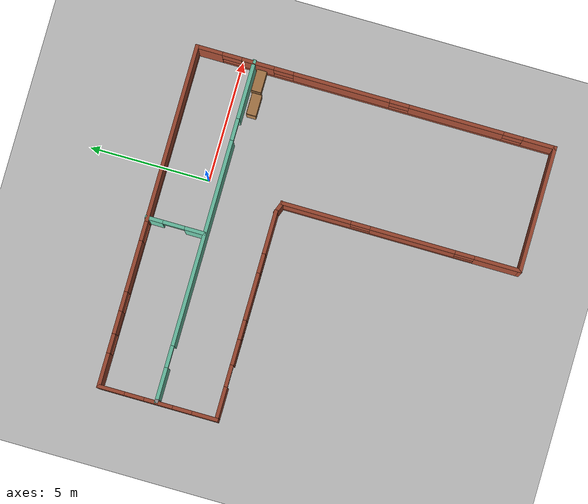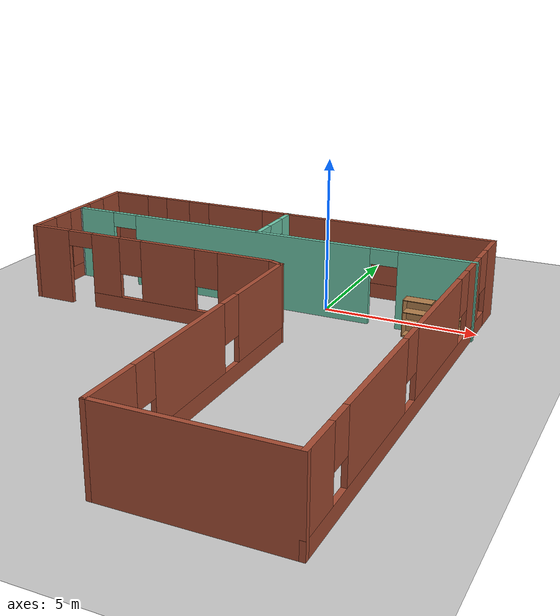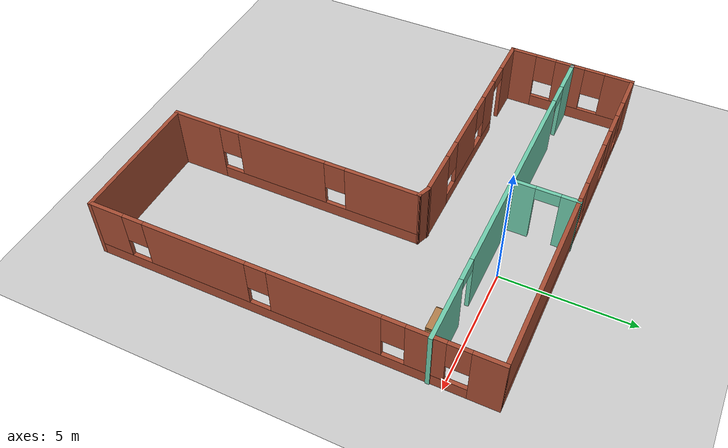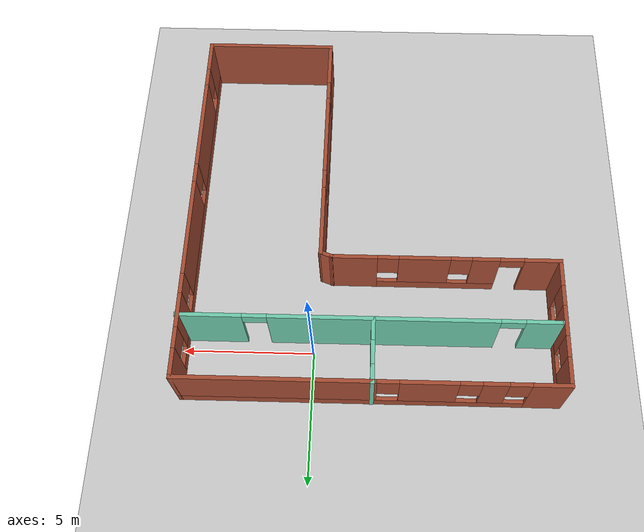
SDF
<sdf version="1.6">
 <world name="default">
  <light name="sun" type="directional">
   <pose>0 0 10 0 -0 0</pose>
   <diffuse>0.8 0.8 0.8 1</diffuse>
   <specular>0.2 0.2 0.2 1</specular>
   <attenuation>
    <range>1000</range>
    <constant>0.9</constant>
    <linear>0.01</linear>
    <quadratic>0.001</quadratic>
   </attenuation>
   <direction>-0.5 0.1 -0.9</direction>
  </light>
  <model name="ground_plane">
   <static>1</static>
   <link name="link">
    <collision name="collision">
     <geometry><plane><normal>0 0 1</normal><size>100 100</size></plane></geometry>
     <surface><friction><ode><mu>100</mu><mu2>50</mu2></ode></friction></surface>
    </collision>
    <visual name="visual">
     <cast_shadows>0</cast_shadows>
     <geometry><plane><normal>0 0 1</normal><size>100 100</size></plane></geometry>
     <material>
      <script><uri>file://media/materials/scripts/gazebo.material</uri><name>Gazebo/Grey</name></script>
     </material>
    </visual>
   </link>
  </model>
  <gravity>0 0 -9.8</gravity>
  <magnetic_field>6e-06 2.3e-05 -4.2e-05</magnetic_field>
  <atmosphere type="adiabatic"/>
  <physics name="default_physics" default="0" type="ode">
   <max_step_size>0.001</max_step_size>
   <real_time_factor>1</real_time_factor>
   <real_time_update_rate>1000</real_time_update_rate>
  </physics>
  <scene><ambient>0.4 0.4 0.4 1</ambient><background>0.7 0.7 0.7 1</background><shadows>1</shadows></scene>
  <spherical_coordinates>
   <surface_model>EARTH_WGS84</surface_model>
   <latitude_deg>0</latitude_deg>
   <longitude_deg>0</longitude_deg>
   <elevation>0</elevation>
   <heading_deg>0</heading_deg>
  </spherical_coordinates>
  <model name="LBuilding">
   <pose>-2.14032 -5.56633 0 0 -0 0</pose>
   <link name="Wall_0">
    <pose>-2.77156 2.56406 0 0 -0 3.14159</pose>
    <visual name="Wall_0_Visual_0">
     <pose>-3.46603 0 1.25 0 -0 0</pose>
     <geometry><box><size>1.81795 0.15 2.5</size></box></geometry>
     <material>
      <script><uri>file://media/materials/scripts/gazebo.material</uri><name>Gazebo/Bricks</name></script>
      <ambient>1 1 1 1</ambient>
     </material>
     <meta><layer>0</layer></meta>
    </visual>
    <collision name="Wall_0_Collision_0">
     <geometry><box><size>1.81795 0.15 2.5</size></box></geometry>
     <pose>-3.46603 0 1.25 0 -0 0</pose>
    </collision>
    <visual name="Wall_0_Visual_1">
     <pose>3.66017 0 1.25 0 -0 0</pose>
     <geometry><box><size>1.42966 0.15 2.5</size></box></geometry>
     <material>
      <script><uri>file://media/materials/scripts/gazebo.material</uri><name>Gazebo/Bricks</name></script>
      <ambient>1 1 1 1</ambient>
     </material>
     <meta><layer>0</layer></meta>
    </visual>
    <collision name="Wall_0_Collision_1">
     <geometry><box><size>1.42966 0.15 2.5</size></box></geometry>
     <pose>3.66017 0 1.25 0 -0 0</pose>
    </collision>
    <visual name="Wall_0_Visual_2">
     <pose>-0.255854 0 0.25 0 -0 0</pose>
     <geometry><box><size>4.60239 0.15 0.5</size></box></geometry>
     <material>
      <script><uri>file://media/materials/scripts/gazebo.material</uri><name>Gazebo/Bricks</name></script>
      <ambient>1 1 1 1</ambient>
     </material>
     <meta><layer>0</layer></meta>
    </visual>
    <collision name="Wall_0_Collision_2">
     <geometry><box><size>4.60239 0.15 0.5</size></box></geometry>
     <pose>-0.255854 0 0.25 0 -0 0</pose>
    </collision>
    <visual name="Wall_0_Visual_3">
     <pose>-0.78156 0 1.5 0 -0 0</pose>
     <geometry><box><size>1.95098 0.15 2</size></box></geometry>
     <material>
      <script><uri>file://media/materials/scripts/gazebo.material</uri><name>Gazebo/Bricks</name></script>
      <ambient>1 1 1 1</ambient>
     </material>
     <meta><layer>0</layer></meta>
    </visual>
    <collision name="Wall_0_Collision_3">
     <geometry><box><size>1.95098 0.15 2</size></box></geometry>
     <pose>-0.78156 0 1.5 0 -0 0</pose>
    </collision>
    <visual name="Wall_0_Visual_4">
     <pose>1.51964 0 1.5 0 -0 0</pose>
     <geometry><box><size>1.05141 0.15 2</size></box></geometry>
     <material>
      <script><uri>file://media/materials/scripts/gazebo.material</uri><name>Gazebo/Bricks</name></script>
      <ambient>1 1 1 1</ambient>
     </material>
     <meta><layer>0</layer></meta>
    </visual>
    <collision name="Wall_0_Collision_4">
     <geometry><box><size>1.05141 0.15 2</size></box></geometry>
     <pose>1.51964 0 1.5 0 -0 0</pose>
    </collision>
    <visual name="Wall_0_Visual_5">
     <pose>-2.15705 0 1.9 0 -0 0</pose>
     <geometry><box><size>0.8 0.15 1.2</size></box></geometry>
     <material>
      <script><uri>file://media/materials/scripts/gazebo.material</uri><name>Gazebo/Bricks</name></script>
      <ambient>1 1 1 1</ambient>
     </material>
     <meta><layer>0</layer></meta>
    </visual>
    <collision name="Wall_0_Collision_5">
     <geometry><box><size>0.8 0.15 1.2</size></box></geometry>
     <pose>-2.15705 0 1.9 0 -0 0</pose>
    </collision>
    <visual name="Wall_0_Visual_6">
     <pose>0.593929 0 1.9 0 -0 0</pose>
     <geometry><box><size>0.8 0.15 1.2</size></box></geometry>
     <material>
      <script><uri>file://media/materials/scripts/gazebo.material</uri><name>Gazebo/Bricks</name></script>
      <ambient>1 1 1 1</ambient>
     </material>
     <meta><layer>0</layer></meta>
    </visual>
    <collision name="Wall_0_Collision_6">
     <geometry><box><size>0.8 0.15 1.2</size></box></geometry>
     <pose>0.593929 0 1.9 0 -0 0</pose>
    </collision>
    <visual name="Wall_0_Visual_7">
     <pose>2.49534 0 2.25 0 -0 0</pose>
     <geometry><box><size>0.9 0.15 0.5</size></box></geometry>
     <material>
      <script><uri>file://media/materials/scripts/gazebo.material</uri><name>Gazebo/Bricks</name></script>
      <ambient>1 1 1 1</ambient>
     </material>
     <meta><layer>0</layer></meta>
    </visual>
    <collision name="Wall_0_Collision_7">
     <geometry><box><size>0.9 0.15 0.5</size></box></geometry>
     <pose>2.49534 0 2.25 0 -0 0</pose>
    </collision>
   </link>
   <link name="Wall_1">
    <pose>-7.07156 4.98905 0 0 -0 1.5708</pose>
    <visual name="Wall_1_Visual_0">
     <pose>-1.96033 0 1.25 0 -0 0</pose>
     <geometry><box><size>1.07935 0.15 2.5</size></box></geometry>
     <material>
      <script><uri>file://media/materials/scripts/gazebo.material</uri><name>Gazebo/Bricks</name></script>
      <ambient>1 1 1 1</ambient>
     </material>
     <meta><layer>0</layer></meta>
    </visual>
    <collision name="Wall_1_Collision_0">
     <geometry><box><size>1.07935 0.15 2.5</size></box></geometry>
     <pose>-1.96033 0 1.25 0 -0 0</pose>
    </collision>
    <visual name="Wall_1_Visual_1">
     <pose>0.539675 0 0.25 0 -0 0</pose>
     <geometry><box><size>3.92065 0.15 0.5</size></box></geometry>
     <material>
      <script><uri>file://media/materials/scripts/gazebo.material</uri><name>Gazebo/Bricks</name></script>
      <ambient>1 1 1 1</ambient>
     </material>
     <meta><layer>0</layer></meta>
    </visual>
    <collision name="Wall_1_Collision_1">
     <geometry><box><size>3.92065 0.15 0.5</size></box></geometry>
     <pose>0.539675 0 0.25 0 -0 0</pose>
    </collision>
    <visual name="Wall_1_Visual_2">
     <pose>-0.029489 0 1.5 0 -0 0</pose>
     <geometry><box><size>1.18232 0.15 2</size></box></geometry>
     <material>
      <script><uri>file://media/materials/scripts/gazebo.material</uri><name>Gazebo/Bricks</name></script>
      <ambient>1 1 1 1</ambient>
     </material>
     <meta><layer>0</layer></meta>
    </visual>
    <collision name="Wall_1_Collision_2">
     <geometry><box><size>1.18232 0.15 2</size></box></geometry>
     <pose>-0.029489 0 1.5 0 -0 0</pose>
    </collision>
    <visual name="Wall_1_Visual_3">
     <pose>1.93084 0 1.5 0 -0 0</pose>
     <geometry><box><size>1.13833 0.15 2</size></box></geometry>
     <material>
      <script><uri>file://media/materials/scripts/gazebo.material</uri><name>Gazebo/Bricks</name></script>
      <ambient>1 1 1 1</ambient>
     </material>
     <meta><layer>0</layer></meta>
    </visual>
    <collision name="Wall_1_Collision_3">
     <geometry><box><size>1.13833 0.15 2</size></box></geometry>
     <pose>1.93084 0 1.5 0 -0 0</pose>
    </collision>
    <visual name="Wall_1_Visual_4">
     <pose>-1.02065 0 1.9 0 -0 0</pose>
     <geometry><box><size>0.8 0.15 1.2</size></box></geometry>
     <material>
      <script><uri>file://media/materials/scripts/gazebo.material</uri><name>Gazebo/Bricks</name></script>
      <ambient>1 1 1 1</ambient>
     </material>
     <meta><layer>0</layer></meta>
    </visual>
    <collision name="Wall_1_Collision_4">
     <geometry><box><size>0.8 0.15 1.2</size></box></geometry>
     <pose>-1.02065 0 1.9 0 -0 0</pose>
    </collision>
    <visual name="Wall_1_Visual_5">
     <pose>0.961672 0 1.9 0 -0 0</pose>
     <geometry><box><size>0.8 0.15 1.2</size></box></geometry>
     <material>
      <script><uri>file://media/materials/scripts/gazebo.material</uri><name>Gazebo/Bricks</name></script>
      <ambient>1 1 1 1</ambient>
     </material>
     <meta><layer>0</layer></meta>
    </visual>
    <collision name="Wall_1_Collision_5">
     <geometry><box><size>0.8 0.15 1.2</size></box></geometry>
     <pose>0.961672 0 1.9 0 -0 0</pose>
    </collision>
   </link>
   <link name="Wall_11">
    <pose>0.021559 5.04517 0 0 -0 3.14159</pose>
    <visual name="Wall_11_Visual_0">
     <pose>-5.89662 0 1.25 0 -0 0</pose>
     <geometry><box><size>2.45676 0.15 2.5</size></box></geometry>
     <material>
      <script><uri>file://media/materials/scripts/gazebo.material</uri><name>Gazebo/Grey</name></script>
      <ambient>0.435294 0.796078 0.67451 1</ambient>
     </material>
     <meta><layer>0</layer></meta>
    </visual>
    <collision name="Wall_11_Collision_0">
     <geometry><box><size>2.45676 0.15 2.5</size></box></geometry>
     <pose>-5.89662 0 1.25 0 -0 0</pose>
    </collision>
    <visual name="Wall_11_Visual_1">
     <pose>0.489859 0 1.25 0 -0 0</pose>
     <geometry><box><size>8.5162 0.15 2.5</size></box></geometry>
     <material>
      <script><uri>file://media/materials/scripts/gazebo.material</uri><name>Gazebo/Grey</name></script>
      <ambient>0.435294 0.796078 0.67451 1</ambient>
     </material>
     <meta><layer>0</layer></meta>
    </visual>
    <collision name="Wall_11_Collision_1">
     <geometry><box><size>8.5162 0.15 2.5</size></box></geometry>
     <pose>0.489859 0 1.25 0 -0 0</pose>
    </collision>
    <visual name="Wall_11_Visual_2">
     <pose>6.38648 0 1.25 0 -0 0</pose>
     <geometry><box><size>1.47704 0.15 2.5</size></box></geometry>
     <material>
      <script><uri>file://media/materials/scripts/gazebo.material</uri><name>Gazebo/Grey</name></script>
      <ambient>0.435294 0.796078 0.67451 1</ambient>
     </material>
     <meta><layer>0</layer></meta>
    </visual>
    <collision name="Wall_11_Collision_2">
     <geometry><box><size>1.47704 0.15 2.5</size></box></geometry>
     <pose>6.38648 0 1.25 0 -0 0</pose>
    </collision>
    <visual name="Wall_11_Visual_3">
     <pose>-4.21824 0 2.25 0 -0 0</pose>
     <geometry><box><size>0.9 0.15 0.5</size></box></geometry>
     <material>
      <script><uri>file://media/materials/scripts/gazebo.material</uri><name>Gazebo/Grey</name></script>
      <ambient>0.435294 0.796078 0.67451 1</ambient>
     </material>
     <meta><layer>0</layer></meta>
    </visual>
    <collision name="Wall_11_Collision_3">
     <geometry><box><size>0.9 0.15 0.5</size></box></geometry>
     <pose>-4.21824 0 2.25 0 -0 0</pose>
    </collision>
    <visual name="Wall_11_Visual_4">
     <pose>5.19796 0 2.25 0 -0 0</pose>
     <geometry><box><size>0.9 0.15 0.5</size></box></geometry>
     <material>
      <script><uri>file://media/materials/scripts/gazebo.material</uri><name>Gazebo/Grey</name></script>
      <ambient>0.435294 0.796078 0.67451 1</ambient>
     </material>
     <meta><layer>0</layer></meta>
    </visual>
    <collision name="Wall_11_Collision_4">
     <geometry><box><size>0.9 0.15 0.5</size></box></geometry>
     <pose>5.19796 0 2.25 0 -0 0</pose>
    </collision>
   </link>
   <link name="Wall_12">
    <collision name="Wall_12_Collision">
     <geometry><box><size>0.15 0.15 2.5</size></box></geometry>
     <pose>0 0 1.25 0 -0 0</pose>
    </collision>
    <visual name="Wall_12_Visual">
     <pose>0 0 1.25 0 -0 0</pose>
     <geometry><box><size>0.15 0.15 2.5</size></box></geometry>
     <material>
      <script><uri>file://media/materials/scripts/gazebo.material</uri><name>Gazebo/Grey</name></script>
      <ambient>1 1 1 1</ambient>
     </material>
     <meta><layer>0</layer></meta>
    </visual>
    <pose>-7.01522 5.04517 0 0 -0 0</pose>
   </link>
   <link name="Wall_14">
    <pose>-0.094975 6.26095 0 0 0 -1.5708</pose>
    <visual name="Wall_14_Visual_0">
     <pose>-0.883993 0 1.25 0 -0 0</pose>
     <geometry><box><size>0.732013 0.15 2.5</size></box></geometry>
     <material>
      <script><uri>file://media/materials/scripts/gazebo.material</uri><name>Gazebo/Grey</name></script>
      <ambient>0.435294 0.796078 0.67451 1</ambient>
     </material>
     <meta><layer>0</layer></meta>
    </visual>
    <collision name="Wall_14_Collision_0">
     <geometry><box><size>0.732013 0.15 2.5</size></box></geometry>
     <pose>-0.883993 0 1.25 0 -0 0</pose>
    </collision>
    <visual name="Wall_14_Visual_1">
     <pose>0.816007 0 1.25 0 -0 0</pose>
     <geometry><box><size>0.867987 0.15 2.5</size></box></geometry>
     <material>
      <script><uri>file://media/materials/scripts/gazebo.material</uri><name>Gazebo/Grey</name></script>
      <ambient>0.435294 0.796078 0.67451 1</ambient>
     </material>
     <meta><layer>0</layer></meta>
    </visual>
    <collision name="Wall_14_Collision_1">
     <geometry><box><size>0.867987 0.15 2.5</size></box></geometry>
     <pose>0.816007 0 1.25 0 -0 0</pose>
    </collision>
    <visual name="Wall_14_Visual_2">
     <pose>-0.067987 0 2.25 0 -0 0</pose>
     <geometry><box><size>0.9 0.15 0.5</size></box></geometry>
     <material>
      <script><uri>file://media/materials/scripts/gazebo.material</uri><name>Gazebo/Grey</name></script>
      <ambient>0.435294 0.796078 0.67451 1</ambient>
     </material>
     <meta><layer>0</layer></meta>
    </visual>
    <collision name="Wall_14_Collision_2">
     <geometry><box><size>0.9 0.15 0.5</size></box></geometry>
     <pose>-0.067987 0 2.25 0 -0 0</pose>
    </collision>
   </link>
   <link name="Wall_2">
    <pose>-0.021559 7.41406 0 0 -0 0</pose>
    <visual name="Wall_2_Visual_0">
     <pose>-6.4054 0 1.25 0 -0 0</pose>
     <geometry><box><size>1.4392 0.15 2.5</size></box></geometry>
     <material>
      <script><uri>file://media/materials/scripts/gazebo.material</uri><name>Gazebo/Bricks</name></script>
      <ambient>1 1 1 1</ambient>
     </material>
     <meta><layer>0</layer></meta>
    </visual>
    <collision name="Wall_2_Collision_0">
     <geometry><box><size>1.4392 0.15 2.5</size></box></geometry>
     <pose>-6.4054 0 1.25 0 -0 0</pose>
    </collision>
    <visual name="Wall_2_Visual_1">
     <pose>0.719601 0 0.25 0 -0 0</pose>
     <geometry><box><size>12.8108 0.15 0.5</size></box></geometry>
     <material>
      <script><uri>file://media/materials/scripts/gazebo.material</uri><name>Gazebo/Bricks</name></script>
      <ambient>1 1 1 1</ambient>
     </material>
     <meta><layer>0</layer></meta>
    </visual>
    <collision name="Wall_2_Collision_1">
     <geometry><box><size>12.8108 0.15 0.5</size></box></geometry>
     <pose>0.719601 0 0.25 0 -0 0</pose>
    </collision>
    <visual name="Wall_2_Visual_2">
     <pose>-4.416 0 1.5 0 -0 0</pose>
     <geometry><box><size>0.93959 0.15 2</size></box></geometry>
     <material>
      <script><uri>file://media/materials/scripts/gazebo.material</uri><name>Gazebo/Bricks</name></script>
      <ambient>1 1 1 1</ambient>
     </material>
     <meta><layer>0</layer></meta>
    </visual>
    <collision name="Wall_2_Collision_2">
     <geometry><box><size>0.93959 0.15 2</size></box></geometry>
     <pose>-4.416 0 1.5 0 -0 0</pose>
    </collision>
    <visual name="Wall_2_Visual_3">
     <pose>-2.08981 0 1.5 0 -0 0</pose>
     <geometry><box><size>2.1128 0.15 2</size></box></geometry>
     <material>
      <script><uri>file://media/materials/scripts/gazebo.material</uri><name>Gazebo/Bricks</name></script>
      <ambient>1 1 1 1</ambient>
     </material>
     <meta><layer>0</layer></meta>
    </visual>
    <collision name="Wall_2_Collision_3">
     <geometry><box><size>2.1128 0.15 2</size></box></geometry>
     <pose>-2.08981 0 1.5 0 -0 0</pose>
    </collision>
    <visual name="Wall_2_Visual_4">
     <pose>3.4458 0 1.5 0 -0 0</pose>
     <geometry><box><size>7.35841 0.15 2</size></box></geometry>
     <material>
      <script><uri>file://media/materials/scripts/gazebo.material</uri><name>Gazebo/Bricks</name></script>
      <ambient>1 1 1 1</ambient>
     </material>
     <meta><layer>0</layer></meta>
    </visual>
    <collision name="Wall_2_Collision_4">
     <geometry><box><size>7.35841 0.15 2</size></box></geometry>
     <pose>3.4458 0 1.5 0 -0 0</pose>
    </collision>
    <visual name="Wall_2_Visual_5">
     <pose>-5.2858 0 1.9 0 -0 0</pose>
     <geometry><box><size>0.8 0.15 1.2</size></box></geometry>
     <material>
      <script><uri>file://media/materials/scripts/gazebo.material</uri><name>Gazebo/Bricks</name></script>
      <ambient>1 1 1 1</ambient>
     </material>
     <meta><layer>0</layer></meta>
    </visual>
    <collision name="Wall_2_Collision_5">
     <geometry><box><size>0.8 0.15 1.2</size></box></geometry>
     <pose>-5.2858 0 1.9 0 -0 0</pose>
    </collision>
    <visual name="Wall_2_Visual_6">
     <pose>-3.54621 0 1.9 0 -0 0</pose>
     <geometry><box><size>0.8 0.15 1.2</size></box></geometry>
     <material>
      <script><uri>file://media/materials/scripts/gazebo.material</uri><name>Gazebo/Bricks</name></script>
      <ambient>1 1 1 1</ambient>
     </material>
     <meta><layer>0</layer></meta>
    </visual>
    <collision name="Wall_2_Collision_6">
     <geometry><box><size>0.8 0.15 1.2</size></box></geometry>
     <pose>-3.54621 0 1.9 0 -0 0</pose>
    </collision>
    <visual name="Wall_2_Visual_7">
     <pose>-0.633406 0 1.9 0 -0 0</pose>
     <geometry><box><size>0.8 0.15 1.2</size></box></geometry>
     <material>
      <script><uri>file://media/materials/scripts/gazebo.material</uri><name>Gazebo/Bricks</name></script>
      <ambient>1 1 1 1</ambient>
     </material>
     <meta><layer>0</layer></meta>
    </visual>
    <collision name="Wall_2_Collision_7">
     <geometry><box><size>0.8 0.15 1.2</size></box></geometry>
     <pose>-0.633406 0 1.9 0 -0 0</pose>
    </collision>
   </link>
   <link name="Wall_3">
    <pose>7.02844 -0.010945 0 0 0 -1.5708</pose>
    <visual name="Wall_3_Visual_0">
     <pose>-6.93084 0 1.25 0 -0 0</pose>
     <geometry><box><size>1.13833 0.15 2.5</size></box></geometry>
     <material>
      <script><uri>file://media/materials/scripts/gazebo.material</uri><name>Gazebo/Bricks</name></script>
      <ambient>1 1 1 1</ambient>
     </material>
     <meta><layer>0</layer></meta>
    </visual>
    <collision name="Wall_3_Collision_0">
     <geometry><box><size>1.13833 0.15 2.5</size></box></geometry>
     <pose>-6.93084 0 1.25 0 -0 0</pose>
    </collision>
    <visual name="Wall_3_Visual_1">
     <pose>0.569164 0 0.25 0 -0 0</pose>
     <geometry><box><size>13.8617 0.15 0.5</size></box></geometry>
     <material>
      <script><uri>file://media/materials/scripts/gazebo.material</uri><name>Gazebo/Bricks</name></script>
      <ambient>1 1 1 1</ambient>
     </material>
     <meta><layer>0</layer></meta>
    </visual>
    <collision name="Wall_3_Collision_1">
     <geometry><box><size>13.8617 0.15 0.5</size></box></geometry>
     <pose>0.569164 0 0.25 0 -0 0</pose>
    </collision>
    <visual name="Wall_3_Visual_2">
     <pose>-4.8896 0 1.5 0 -0 0</pose>
     <geometry><box><size>1.34415 0.15 2</size></box></geometry>
     <material>
      <script><uri>file://media/materials/scripts/gazebo.material</uri><name>Gazebo/Bricks</name></script>
      <ambient>1 1 1 1</ambient>
     </material>
     <meta><layer>0</layer></meta>
    </visual>
    <collision name="Wall_3_Collision_2">
     <geometry><box><size>1.34415 0.15 2</size></box></geometry>
     <pose>-4.8896 0 1.5 0 -0 0</pose>
    </collision>
    <visual name="Wall_3_Visual_3">
     <pose>-1.41884 0 1.5 0 -0 0</pose>
     <geometry><box><size>3.99738 0.15 2</size></box></geometry>
     <material>
      <script><uri>file://media/materials/scripts/gazebo.material</uri><name>Gazebo/Bricks</name></script>
      <ambient>1 1 1 1</ambient>
     </material>
     <meta><layer>0</layer></meta>
    </visual>
    <collision name="Wall_3_Collision_3">
     <geometry><box><size>3.99738 0.15 2</size></box></geometry>
     <pose>-1.41884 0 1.5 0 -0 0</pose>
    </collision>
    <visual name="Wall_3_Visual_4">
     <pose>3.3396 0 1.5 0 -0 0</pose>
     <geometry><box><size>3.91949 0.15 2</size></box></geometry>
     <material>
      <script><uri>file://media/materials/scripts/gazebo.material</uri><name>Gazebo/Bricks</name></script>
      <ambient>1 1 1 1</ambient>
     </material>
     <meta><layer>0</layer></meta>
    </visual>
    <collision name="Wall_3_Collision_4">
     <geometry><box><size>3.91949 0.15 2</size></box></geometry>
     <pose>3.3396 0 1.5 0 -0 0</pose>
    </collision>
    <visual name="Wall_3_Visual_5">
     <pose>6.79967 0 1.5 0 -0 0</pose>
     <geometry><box><size>1.40065 0.15 2</size></box></geometry>
     <material>
      <script><uri>file://media/materials/scripts/gazebo.material</uri><name>Gazebo/Bricks</name></script>
      <ambient>1 1 1 1</ambient>
     </material>
     <meta><layer>0</layer></meta>
    </visual>
    <collision name="Wall_3_Collision_5">
     <geometry><box><size>1.40065 0.15 2</size></box></geometry>
     <pose>6.79967 0 1.5 0 -0 0</pose>
    </collision>
    <visual name="Wall_3_Visual_6">
     <pose>-5.96167 0 1.9 0 -0 0</pose>
     <geometry><box><size>0.8 0.15 1.2</size></box></geometry>
     <material>
      <script><uri>file://media/materials/scripts/gazebo.material</uri><name>Gazebo/Bricks</name></script>
      <ambient>1 1 1 1</ambient>
     </material>
     <meta><layer>0</layer></meta>
    </visual>
    <collision name="Wall_3_Collision_6">
     <geometry><box><size>0.8 0.15 1.2</size></box></geometry>
     <pose>-5.96167 0 1.9 0 -0 0</pose>
    </collision>
    <visual name="Wall_3_Visual_7">
     <pose>-3.81753 0 1.9 0 -0 0</pose>
     <geometry><box><size>0.8 0.15 1.2</size></box></geometry>
     <material>
      <script><uri>file://media/materials/scripts/gazebo.material</uri><name>Gazebo/Bricks</name></script>
      <ambient>1 1 1 1</ambient>
     </material>
     <meta><layer>0</layer></meta>
    </visual>
    <collision name="Wall_3_Collision_7">
     <geometry><box><size>0.8 0.15 1.2</size></box></geometry>
     <pose>-3.81753 0 1.9 0 -0 0</pose>
    </collision>
    <visual name="Wall_3_Visual_8">
     <pose>0.979855 0 1.9 0 -0 0</pose>
     <geometry><box><size>0.8 0.15 1.2</size></box></geometry>
     <material>
      <script><uri>file://media/materials/scripts/gazebo.material</uri><name>Gazebo/Bricks</name></script>
      <ambient>1 1 1 1</ambient>
     </material>
     <meta><layer>0</layer></meta>
    </visual>
    <collision name="Wall_3_Collision_8">
     <geometry><box><size>0.8 0.15 1.2</size></box></geometry>
     <pose>0.979855 0 1.9 0 -0 0</pose>
    </collision>
    <visual name="Wall_3_Visual_9">
     <pose>5.69935 0 1.9 0 -0 0</pose>
     <geometry><box><size>0.8 0.15 1.2</size></box></geometry>
     <material>
      <script><uri>file://media/materials/scripts/gazebo.material</uri><name>Gazebo/Bricks</name></script>
      <ambient>1 1 1 1</ambient>
     </material>
     <meta><layer>0</layer></meta>
    </visual>
    <collision name="Wall_3_Collision_9">
     <geometry><box><size>0.8 0.15 1.2</size></box></geometry>
     <pose>5.69935 0 1.9 0 -0 0</pose>
    </collision>
   </link>
   <link name="Wall_7">
    <collision name="Wall_7_Collision">
     <geometry><box><size>5.25 0.15 2.5</size></box></geometry>
     <pose>0 0 1.25 0 -0 0</pose>
    </collision>
    <visual name="Wall_7_Visual">
     <pose>0 0 1.25 0 -0 0</pose>
     <geometry><box><size>5.25 0.15 2.5</size></box></geometry>
     <material>
      <script><uri>file://media/materials/scripts/gazebo.material</uri><name>Gazebo/Bricks</name></script>
      <ambient>1 1 1 1</ambient>
     </material>
     <meta><layer>0</layer></meta>
    </visual>
    <pose>4.47844 -7.43595 0 0 -0 3.14159</pose>
   </link>
   <link name="Wall_8">
    <pose>1.92844 -2.51095 0 0 -0 1.5708</pose>
    <visual name="Wall_8_Visual_0">
     <pose>-4.01488 0 1.25 0 -0 0</pose>
     <geometry><box><size>1.97025 0.15 2.5</size></box></geometry>
     <material>
      <script><uri>file://media/materials/scripts/gazebo.material</uri><name>Gazebo/Bricks</name></script>
      <ambient>1 1 1 1</ambient>
     </material>
     <meta><layer>0</layer></meta>
    </visual>
    <collision name="Wall_8_Collision_0">
     <geometry><box><size>1.97025 0.15 2.5</size></box></geometry>
     <pose>-4.01488 0 1.25 0 -0 0</pose>
    </collision>
    <visual name="Wall_8_Visual_1">
     <pose>0.985122 0 0.25 0 -0 0</pose>
     <geometry><box><size>8.02975 0.15 0.5</size></box></geometry>
     <material>
      <script><uri>file://media/materials/scripts/gazebo.material</uri><name>Gazebo/Bricks</name></script>
      <ambient>1 1 1 1</ambient>
     </material>
     <meta><layer>0</layer></meta>
    </visual>
    <collision name="Wall_8_Collision_1">
     <geometry><box><size>8.02975 0.15 0.5</size></box></geometry>
     <pose>0.985122 0 0.25 0 -0 0</pose>
    </collision>
    <visual name="Wall_8_Visual_2">
     <pose>-0.473434 0 1.5 0 -0 0</pose>
     <geometry><box><size>3.51264 0.15 2</size></box></geometry>
     <material>
      <script><uri>file://media/materials/scripts/gazebo.material</uri><name>Gazebo/Bricks</name></script>
      <ambient>1 1 1 1</ambient>
     </material>
     <meta><layer>0</layer></meta>
    </visual>
    <collision name="Wall_8_Collision_2">
     <geometry><box><size>3.51264 0.15 2</size></box></geometry>
     <pose>-0.473434 0 1.5 0 -0 0</pose>
    </collision>
    <visual name="Wall_8_Visual_3">
     <pose>3.54144 0 1.5 0 -0 0</pose>
     <geometry><box><size>2.91711 0.15 2</size></box></geometry>
     <material>
      <script><uri>file://media/materials/scripts/gazebo.material</uri><name>Gazebo/Bricks</name></script>
      <ambient>1 1 1 1</ambient>
     </material>
     <meta><layer>0</layer></meta>
    </visual>
    <collision name="Wall_8_Collision_3">
     <geometry><box><size>2.91711 0.15 2</size></box></geometry>
     <pose>3.54144 0 1.5 0 -0 0</pose>
    </collision>
    <visual name="Wall_8_Visual_4">
     <pose>-2.62975 0 1.9 0 -0 0</pose>
     <geometry><box><size>0.8 0.15 1.2</size></box></geometry>
     <material>
      <script><uri>file://media/materials/scripts/gazebo.material</uri><name>Gazebo/Bricks</name></script>
      <ambient>1 1 1 1</ambient>
     </material>
     <meta><layer>0</layer></meta>
    </visual>
    <collision name="Wall_8_Collision_4">
     <geometry><box><size>0.8 0.15 1.2</size></box></geometry>
     <pose>-2.62975 0 1.9 0 -0 0</pose>
    </collision>
    <visual name="Wall_8_Visual_5">
     <pose>1.68289 0 1.9 0 -0 0</pose>
     <geometry><box><size>0.8 0.15 1.2</size></box></geometry>
     <material>
      <script><uri>file://media/materials/scripts/gazebo.material</uri><name>Gazebo/Bricks</name></script>
      <ambient>1 1 1 1</ambient>
     </material>
     <meta><layer>0</layer></meta>
    </visual>
    <collision name="Wall_8_Collision_5">
     <geometry><box><size>0.8 0.15 1.2</size></box></geometry>
     <pose>1.68289 0 1.9 0 -0 0</pose>
    </collision>
   </link>
   <link name="Wall_9">
    <collision name="Wall_9_Collision">
     <geometry><box><size>0.5772 0.15 2.5</size></box></geometry>
     <pose>0 0 1.25 0 -0 0</pose>
    </collision>
    <visual name="Wall_9_Visual">
     <pose>0 0 1.25 0 -0 0</pose>
     <geometry><box><size>0.5772 0.15 2.5</size></box></geometry>
     <material>
      <script><uri>file://media/materials/scripts/gazebo.material</uri><name>Gazebo/Bricks</name></script>
      <ambient>1 1 1 1</ambient>
     </material>
     <meta><layer>0</layer></meta>
    </visual>
    <pose>1.72844 2.48906 0 0 -0 2.78282</pose>
   </link>
   <static>1</static>
  </model>
  <model name="bookshelf">
   <static>1</static>
   <link name="link">
    <inertial><mass>1</mass></inertial>
    <collision name="back">
     <pose>0 0.005 0.6 0 -0 0</pose>
     <geometry><box><size>0.9 0.01 1.2</size></box></geometry>
    </collision>
    <visual name="visual1">
     <pose>0 0.005 0.6 0 -0 0</pose>
     <geometry><box><size>0.9 0.01 1.2</size></box></geometry>
     <material>
      <script><uri>file://media/materials/scripts/gazebo.material</uri><name>Gazebo/Wood</name></script>
     </material>
    </visual>
    <collision name="left_side">
     <pose>0.45 -0.195 0.6 0 -0 0</pose>
     <geometry><box><size>0.02 0.4 1.2</size></box></geometry>
    </collision>
    <visual name="visual2">
     <pose>0.45 -0.195 0.6 0 -0 0</pose>
     <geometry><box><size>0.02 0.4 1.2</size></box></geometry>
     <material>
      <script><uri>file://media/materials/scripts/gazebo.material</uri><name>Gazebo/Wood</name></script>
     </material>
    </visual>
    <collision name="right_side">
     <pose>-0.45 -0.195 0.6 0 -0 0</pose>
     <geometry><box><size>0.02 0.4 1.2</size></box></geometry>
    </collision>
    <visual name="visual3">
     <pose>-0.45 -0.195 0.6 0 -0 0</pose>
     <geometry><box><size>0.02 0.4 1.2</size></box></geometry>
     <material>
      <script><uri>file://media/materials/scripts/gazebo.material</uri><name>Gazebo/Wood</name></script>
     </material>
    </visual>
    <collision name="bottom">
     <pose>0 -0.195 0.03 0 -0 0</pose>
     <geometry><box><size>0.88 0.4 0.06</size></box></geometry>
    </collision>
    <visual name="visual4">
     <pose>0 -0.195 0.03 0 -0 0</pose>
     <geometry><box><size>0.88 0.4 0.06</size></box></geometry>
     <material>
      <script><uri>file://media/materials/scripts/gazebo.material</uri><name>Gazebo/Wood</name></script>
     </material>
    </visual>
    <collision name="top">
     <pose>0 -0.195 1.19 0 -0 0</pose>
     <geometry><box><size>0.88 0.4 0.02</size></box></geometry>
    </collision>
    <visual name="visual5">
     <pose>0 -0.195 1.19 0 -0 0</pose>
     <geometry><box><size>0.88 0.4 0.02</size></box></geometry>
     <material>
      <script><uri>file://media/materials/scripts/gazebo.material</uri><name>Gazebo/Wood</name></script>
     </material>
    </visual>
    <collision name="low_shelf">
     <pose>0 -0.195 0.43 0 -0 0</pose>
     <geometry><box><size>0.88 0.4 0.02</size></box></geometry>
    </collision>
    <visual name="visual6">
     <pose>0 -0.195 0.43 0 -0 0</pose>
     <geometry><box><size>0.88 0.4 0.02</size></box></geometry>
     <material>
      <script><uri>file://media/materials/scripts/gazebo.material</uri><name>Gazebo/Wood</name></script>
     </material>
    </visual>
    <collision name="high_shelf">
     <pose>0 -0.195 0.8 0 -0 0</pose>
     <geometry><box><size>0.88 0.4 0.02</size></box></geometry>
    </collision>
    <visual name="visual7">
     <pose>0 -0.195 0.8 0 -0 0</pose>
     <geometry><box><size>0.88 0.4 0.02</size></box></geometry>
     <material>
      <script><uri>file://media/materials/scripts/gazebo.material</uri><name>Gazebo/Wood</name></script>
     </material>
    </visual>
   </link>
   <pose>4.366 -0.665795 0 0 -0 0</pose>
  </model>
  <model name="bookshelf_0">
   <static>1</static>
   <link name="link">
    <inertial><mass>1</mass></inertial>
    <collision name="back">
     <pose>0 0.005 0.6 0 -0 0</pose>
     <geometry><box><size>0.9 0.01 1.2</size></box></geometry>
    </collision>
    <visual name="visual1">
     <pose>0 0.005 0.6 0 -0 0</pose>
     <geometry><box><size>0.9 0.01 1.2</size></box></geometry>
     <material>
      <script><uri>file://media/materials/scripts/gazebo.material</uri><name>Gazebo/Wood</name></script>
     </material>
    </visual>
    <collision name="left_side">
     <pose>0.45 -0.195 0.6 0 -0 0</pose>
     <geometry><box><size>0.02 0.4 1.2</size></box></geometry>
    </collision>
    <visual name="visual2">
     <pose>0.45 -0.195 0.6 0 -0 0</pose>
     <geometry><box><size>0.02 0.4 1.2</size></box></geometry>
     <material>
      <script><uri>file://media/materials/scripts/gazebo.material</uri><name>Gazebo/Wood</name></script>
     </material>
    </visual>
    <collision name="right_side">
     <pose>-0.45 -0.195 0.6 0 -0 0</pose>
     <geometry><box><size>0.02 0.4 1.2</size></box></geometry>
    </collision>
    <visual name="visual3">
     <pose>-0.45 -0.195 0.6 0 -0 0</pose>
     <geometry><box><size>0.02 0.4 1.2</size></box></geometry>
     <material>
      <script><uri>file://media/materials/scripts/gazebo.material</uri><name>Gazebo/Wood</name></script>
     </material>
    </visual>
    <collision name="bottom">
     <pose>0 -0.195 0.03 0 -0 0</pose>
     <geometry><box><size>0.88 0.4 0.06</size></box></geometry>
    </collision>
    <visual name="visual4">
     <pose>0 -0.195 0.03 0 -0 0</pose>
     <geometry><box><size>0.88 0.4 0.06</size></box></geometry>
     <material>
      <script><uri>file://media/materials/scripts/gazebo.material</uri><name>Gazebo/Wood</name></script>
     </material>
    </visual>
    <collision name="top">
     <pose>0 -0.195 1.19 0 -0 0</pose>
     <geometry><box><size>0.88 0.4 0.02</size></box></geometry>
    </collision>
    <visual name="visual5">
     <pose>0 -0.195 1.19 0 -0 0</pose>
     <geometry><box><size>0.88 0.4 0.02</size></box></geometry>
     <material>
      <script><uri>file://media/materials/scripts/gazebo.material</uri><name>Gazebo/Wood</name></script>
     </material>
    </visual>
    <collision name="low_shelf">
     <pose>0 -0.195 0.43 0 -0 0</pose>
     <geometry><box><size>0.88 0.4 0.02</size></box></geometry>
    </collision>
    <visual name="visual6">
     <pose>0 -0.195 0.43 0 -0 0</pose>
     <geometry><box><size>0.88 0.4 0.02</size></box></geometry>
     <material>
      <script><uri>file://media/materials/scripts/gazebo.material</uri><name>Gazebo/Wood</name></script>
     </material>
    </visual>
    <collision name="high_shelf">
     <pose>0 -0.195 0.8 0 -0 0</pose>
     <geometry><box><size>0.88 0.4 0.02</size></box></geometry>
    </collision>
    <visual name="visual7">
     <pose>0 -0.195 0.8 0 -0 0</pose>
     <geometry><box><size>0.88 0.4 0.02</size></box></geometry>
     <material>
      <script><uri>file://media/materials/scripts/gazebo.material</uri><name>Gazebo/Wood</name></script>
     </material>
    </visual>
   </link>
   <pose>3.39756 -0.734457 0 0 -0 0</pose>
  </model>
  <plugin filename="libcollision_map_creator.so" name="collision_map_creator"/>
 </world>
</sdf>
